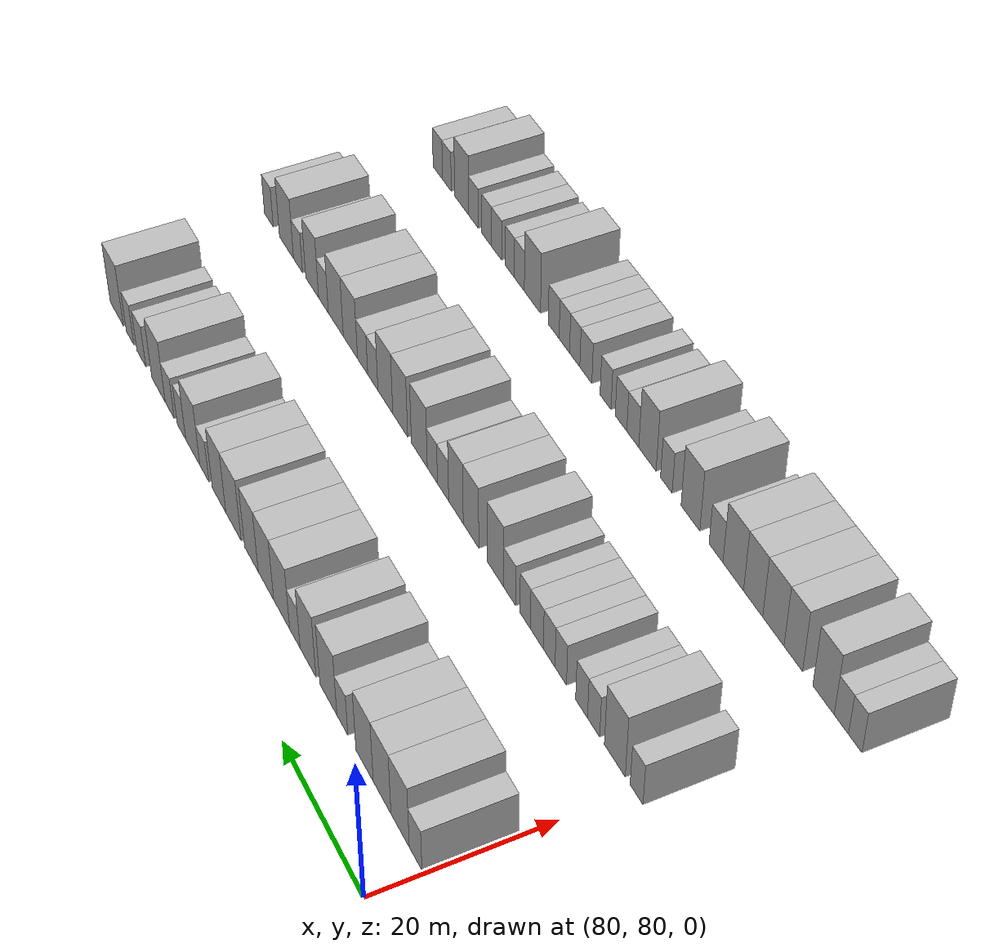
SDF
<sdf version="1.6">
 <world name="default">
  <model name="building_687">
   <static>1</static>
   <pose>91.0000 81.8575 0 0.000000 0.000000 0.000000</pose>
   <link name="link">
    <pose>0 0 3.00 0 0 0</pose>
    <collision name="collision"><geometry><box><size>10.0000 2.8744 6.0000</size></box></geometry></collision>
    <visual name="visual">
     <cast_shadows>0</cast_shadows>
     <geometry><box><size>10.0000 2.8744 6.0000</size></box></geometry>
     <material>
      <script>
       <uri>model://HANNAS_wall/materials/scripts</uri>
       <uri>model://HANNAS_wall/materials/textures</uri>
       <name>vrc/HANNAS_wall</name>
      </script>
     </material>
    </visual>
   </link>
  </model>
  <model name="building_688">
   <static>1</static>
   <pose>91.0000 85.4157 0 0.000000 0.000000 0.000000</pose>
   <link name="link">
    <pose>0 0 4.50 0 0 0</pose>
    <collision name="collision"><geometry><box><size>10.0000 4.2420 9.0000</size></box></geometry></collision>
    <visual name="visual">
     <cast_shadows>0</cast_shadows>
     <geometry><box><size>10.0000 4.2420 9.0000</size></box></geometry>
     <material>
      <script>
       <uri>model://HANNAS_wall/materials/scripts</uri>
       <uri>model://HANNAS_wall/materials/textures</uri>
       <name>vrc/HANNAS_wall</name>
      </script>
     </material>
    </visual>
   </link>
  </model>
  <model name="building_689">
   <static>1</static>
   <pose>91.0000 89.6374 0 0.000000 0.000000 0.000000</pose>
   <link name="link">
    <pose>0 0 4.50 0 0 0</pose>
    <collision name="collision"><geometry><box><size>10.0000 4.2013 9.0000</size></box></geometry></collision>
    <visual name="visual">
     <cast_shadows>0</cast_shadows>
     <geometry><box><size>10.0000 4.2013 9.0000</size></box></geometry>
     <material>
      <script>
       <uri>model://HANNAS_wall/materials/scripts</uri>
       <uri>model://HANNAS_wall/materials/textures</uri>
       <name>vrc/HANNAS_wall</name>
      </script>
     </material>
    </visual>
   </link>
  </model>
  <model name="building_690">
   <static>1</static>
   <pose>91.0000 93.8377 0 0.000000 0.000000 0.000000</pose>
   <link name="link">
    <pose>0 0 4.50 0 0 0</pose>
    <collision name="collision"><geometry><box><size>10.0000 4.1994 9.0000</size></box></geometry></collision>
    <visual name="visual">
     <cast_shadows>0</cast_shadows>
     <geometry><box><size>10.0000 4.1994 9.0000</size></box></geometry>
     <material>
      <script>
       <uri>model://HANNAS_wall/materials/scripts</uri>
       <uri>model://HANNAS_wall/materials/textures</uri>
       <name>vrc/HANNAS_wall</name>
      </script>
     </material>
    </visual>
   </link>
  </model>
  <model name="building_691">
   <static>1</static>
   <pose>91.0000 99.3033 0 0.000000 0.000000 0.000000</pose>
   <link name="link">
    <pose>0 0 3.00 0 0 0</pose>
    <collision name="collision"><geometry><box><size>10.0000 2.7318 6.0000</size></box></geometry></collision>
    <visual name="visual">
     <cast_shadows>0</cast_shadows>
     <geometry><box><size>10.0000 2.7318 6.0000</size></box></geometry>
     <material>
      <script>
       <uri>model://HANNAS_wall/materials/scripts</uri>
       <uri>model://HANNAS_wall/materials/textures</uri>
       <name>vrc/HANNAS_wall</name>
      </script>
     </material>
    </visual>
   </link>
  </model>
  <model name="building_692">
   <static>1</static>
   <pose>91.0000 102.8327 0 0.000000 0.000000 0.000000</pose>
   <link name="link">
    <pose>0 0 4.50 0 0 0</pose>
    <collision name="collision"><geometry><box><size>10.0000 4.3268 9.0000</size></box></geometry></collision>
    <visual name="visual">
     <cast_shadows>0</cast_shadows>
     <geometry><box><size>10.0000 4.3268 9.0000</size></box></geometry>
     <material>
      <script>
       <uri>model://HANNAS_wall/materials/scripts</uri>
       <uri>model://HANNAS_wall/materials/textures</uri>
       <name>vrc/HANNAS_wall</name>
      </script>
     </material>
    </visual>
   </link>
  </model>
  <model name="building_693">
   <static>1</static>
   <pose>91.0000 108.0775 0 0.000000 0.000000 0.000000</pose>
   <link name="link">
    <pose>0 0 4.50 0 0 0</pose>
    <collision name="collision"><geometry><box><size>10.0000 4.1629 9.0000</size></box></geometry></collision>
    <visual name="visual">
     <cast_shadows>0</cast_shadows>
     <geometry><box><size>10.0000 4.1629 9.0000</size></box></geometry>
     <material>
      <script>
       <uri>model://HANNAS_wall/materials/scripts</uri>
       <uri>model://HANNAS_wall/materials/textures</uri>
       <name>vrc/HANNAS_wall</name>
      </script>
     </material>
    </visual>
   </link>
  </model>
  <model name="building_694">
   <static>1</static>
   <pose>91.0000 111.5378 0 0.000000 0.000000 0.000000</pose>
   <link name="link">
    <pose>0 0 3.00 0 0 0</pose>
    <collision name="collision"><geometry><box><size>10.0000 2.7576 6.0000</size></box></geometry></collision>
    <visual name="visual">
     <cast_shadows>0</cast_shadows>
     <geometry><box><size>10.0000 2.7576 6.0000</size></box></geometry>
     <material>
      <script>
       <uri>model://HANNAS_wall/materials/scripts</uri>
       <uri>model://HANNAS_wall/materials/textures</uri>
       <name>vrc/HANNAS_wall</name>
      </script>
     </material>
    </visual>
   </link>
  </model>
  <model name="building_695">
   <static>1</static>
   <pose>91.0000 115.0925 0 0.000000 0.000000 0.000000</pose>
   <link name="link">
    <pose>0 0 4.50 0 0 0</pose>
    <collision name="collision"><geometry><box><size>10.0000 4.3520 9.0000</size></box></geometry></collision>
    <visual name="visual">
     <cast_shadows>0</cast_shadows>
     <geometry><box><size>10.0000 4.3520 9.0000</size></box></geometry>
     <material>
      <script>
       <uri>model://HANNAS_wall/materials/scripts</uri>
       <uri>model://HANNAS_wall/materials/textures</uri>
       <name>vrc/HANNAS_wall</name>
      </script>
     </material>
    </visual>
   </link>
  </model>
  <model name="building_696">
   <static>1</static>
   <pose>91.0000 119.4053 0 0.000000 0.000000 0.000000</pose>
   <link name="link">
    <pose>0 0 4.50 0 0 0</pose>
    <collision name="collision"><geometry><box><size>10.0000 4.2734 9.0000</size></box></geometry></collision>
    <visual name="visual">
     <cast_shadows>0</cast_shadows>
     <geometry><box><size>10.0000 4.2734 9.0000</size></box></geometry>
     <material>
      <script>
       <uri>model://HANNAS_wall/materials/scripts</uri>
       <uri>model://HANNAS_wall/materials/textures</uri>
       <name>vrc/HANNAS_wall</name>
      </script>
     </material>
    </visual>
   </link>
  </model>
  <model name="building_697">
   <static>1</static>
   <pose>91.0000 123.4751 0 0.000000 0.000000 0.000000</pose>
   <link name="link">
    <pose>0 0 4.50 0 0 0</pose>
    <collision name="collision"><geometry><box><size>10.0000 3.8663 9.0000</size></box></geometry></collision>
    <visual name="visual">
     <cast_shadows>0</cast_shadows>
     <geometry><box><size>10.0000 3.8663 9.0000</size></box></geometry>
     <material>
      <script>
       <uri>model://HANNAS_wall/materials/scripts</uri>
       <uri>model://HANNAS_wall/materials/textures</uri>
       <name>vrc/HANNAS_wall</name>
      </script>
     </material>
    </visual>
   </link>
  </model>
  <model name="building_698">
   <static>1</static>
   <pose>91.0000 128.6464 0 0.000000 0.000000 0.000000</pose>
   <link name="link">
    <pose>0 0 4.50 0 0 0</pose>
    <collision name="collision"><geometry><box><size>10.0000 4.4763 9.0000</size></box></geometry></collision>
    <visual name="visual">
     <cast_shadows>0</cast_shadows>
     <geometry><box><size>10.0000 4.4763 9.0000</size></box></geometry>
     <material>
      <script>
       <uri>model://HANNAS_wall/materials/scripts</uri>
       <uri>model://HANNAS_wall/materials/textures</uri>
       <name>vrc/HANNAS_wall</name>
      </script>
     </material>
    </visual>
   </link>
  </model>
  <model name="building_699">
   <static>1</static>
   <pose>91.0000 132.8843 0 0.000000 0.000000 0.000000</pose>
   <link name="link">
    <pose>0 0 4.50 0 0 0</pose>
    <collision name="collision"><geometry><box><size>10.0000 3.9995 9.0000</size></box></geometry></collision>
    <visual name="visual">
     <cast_shadows>0</cast_shadows>
     <geometry><box><size>10.0000 3.9995 9.0000</size></box></geometry>
     <material>
      <script>
       <uri>model://HANNAS_wall/materials/scripts</uri>
       <uri>model://HANNAS_wall/materials/textures</uri>
       <name>vrc/HANNAS_wall</name>
      </script>
     </material>
    </visual>
   </link>
  </model>
  <model name="building_700">
   <static>1</static>
   <pose>91.0000 137.2602 0 0.000000 0.000000 0.000000</pose>
   <link name="link">
    <pose>0 0 3.00 0 0 0</pose>
    <collision name="collision"><geometry><box><size>10.0000 2.7523 6.0000</size></box></geometry></collision>
    <visual name="visual">
     <cast_shadows>0</cast_shadows>
     <geometry><box><size>10.0000 2.7523 6.0000</size></box></geometry>
     <material>
      <script>
       <uri>model://HANNAS_wall/materials/scripts</uri>
       <uri>model://HANNAS_wall/materials/textures</uri>
       <name>vrc/HANNAS_wall</name>
      </script>
     </material>
    </visual>
   </link>
  </model>
  <model name="building_701">
   <static>1</static>
   <pose>91.0000 140.8229 0 0.000000 0.000000 0.000000</pose>
   <link name="link">
    <pose>0 0 4.50 0 0 0</pose>
    <collision name="collision"><geometry><box><size>10.0000 4.3731 9.0000</size></box></geometry></collision>
    <visual name="visual">
     <cast_shadows>0</cast_shadows>
     <geometry><box><size>10.0000 4.3731 9.0000</size></box></geometry>
     <material>
      <script>
       <uri>model://HANNAS_wall/materials/scripts</uri>
       <uri>model://HANNAS_wall/materials/textures</uri>
       <name>vrc/HANNAS_wall</name>
      </script>
     </material>
    </visual>
   </link>
  </model>
  <model name="building_702">
   <static>1</static>
   <pose>91.0000 144.3262 0 0.000000 0.000000 0.000000</pose>
   <link name="link">
    <pose>0 0 3.00 0 0 0</pose>
    <collision name="collision"><geometry><box><size>10.0000 2.6337 6.0000</size></box></geometry></collision>
    <visual name="visual">
     <cast_shadows>0</cast_shadows>
     <geometry><box><size>10.0000 2.6337 6.0000</size></box></geometry>
     <material>
      <script>
       <uri>model://HANNAS_wall/materials/scripts</uri>
       <uri>model://HANNAS_wall/materials/textures</uri>
       <name>vrc/HANNAS_wall</name>
      </script>
     </material>
    </visual>
   </link>
  </model>
  <model name="building_703">
   <static>1</static>
   <pose>91.0000 148.0651 0 0.000000 0.000000 0.000000</pose>
   <link name="link">
    <pose>0 0 3.00 0 0 0</pose>
    <collision name="collision"><geometry><box><size>10.0000 2.8441 6.0000</size></box></geometry></collision>
    <visual name="visual">
     <cast_shadows>0</cast_shadows>
     <geometry><box><size>10.0000 2.8441 6.0000</size></box></geometry>
     <material>
      <script>
       <uri>model://HANNAS_wall/materials/scripts</uri>
       <uri>model://HANNAS_wall/materials/textures</uri>
       <name>vrc/HANNAS_wall</name>
      </script>
     </material>
    </visual>
   </link>
  </model>
  <model name="building_704">
   <static>1</static>
   <pose>91.0000 151.6597 0 0.000000 0.000000 0.000000</pose>
   <link name="link">
    <pose>0 0 4.50 0 0 0</pose>
    <collision name="collision"><geometry><box><size>10.0000 4.3451 9.0000</size></box></geometry></collision>
    <visual name="visual">
     <cast_shadows>0</cast_shadows>
     <geometry><box><size>10.0000 4.3451 9.0000</size></box></geometry>
     <material>
      <script>
       <uri>model://HANNAS_wall/materials/scripts</uri>
       <uri>model://HANNAS_wall/materials/textures</uri>
       <name>vrc/HANNAS_wall</name>
      </script>
     </material>
    </visual>
   </link>
  </model>
  <model name="building_705">
   <static>1</static>
   <pose>91.0000 157.3142 0 0.000000 0.000000 0.000000</pose>
   <link name="link">
    <pose>0 0 3.00 0 0 0</pose>
    <collision name="collision"><geometry><box><size>10.0000 2.9640 6.0000</size></box></geometry></collision>
    <visual name="visual">
     <cast_shadows>0</cast_shadows>
     <geometry><box><size>10.0000 2.9640 6.0000</size></box></geometry>
     <material>
      <script>
       <uri>model://HANNAS_wall/materials/scripts</uri>
       <uri>model://HANNAS_wall/materials/textures</uri>
       <name>vrc/HANNAS_wall</name>
      </script>
     </material>
    </visual>
   </link>
  </model>
  <model name="building_706">
   <static>1</static>
   <pose>91.0000 161.1020 0 0.000000 0.000000 0.000000</pose>
   <link name="link">
    <pose>0 0 3.00 0 0 0</pose>
    <collision name="collision"><geometry><box><size>10.0000 2.6116 6.0000</size></box></geometry></collision>
    <visual name="visual">
     <cast_shadows>0</cast_shadows>
     <geometry><box><size>10.0000 2.6116 6.0000</size></box></geometry>
     <material>
      <script>
       <uri>model://HANNAS_wall/materials/scripts</uri>
       <uri>model://HANNAS_wall/materials/textures</uri>
       <name>vrc/HANNAS_wall</name>
      </script>
     </material>
    </visual>
   </link>
  </model>
  <model name="building_707">
   <static>1</static>
   <pose>91.0000 165.6554 0 0.000000 0.000000 0.000000</pose>
   <link name="link">
    <pose>0 0 4.50 0 0 0</pose>
    <collision name="collision"><geometry><box><size>10.0000 4.4952 9.0000</size></box></geometry></collision>
    <visual name="visual">
     <cast_shadows>0</cast_shadows>
     <geometry><box><size>10.0000 4.4952 9.0000</size></box></geometry>
     <material>
      <script>
       <uri>model://HANNAS_wall/materials/scripts</uri>
       <uri>model://HANNAS_wall/materials/textures</uri>
       <name>vrc/HANNAS_wall</name>
      </script>
     </material>
    </visual>
   </link>
  </model>
  <model name="building_857">
   <static>1</static>
   <pose>113.0000 79.5423 0 0.000000 0.000000 0.000000</pose>
   <link name="link">
    <pose>0 0 3.00 0 0 0</pose>
    <collision name="collision"><geometry><box><size>10.0000 2.6088 6.0000</size></box></geometry></collision>
    <visual name="visual">
     <cast_shadows>0</cast_shadows>
     <geometry><box><size>10.0000 2.6088 6.0000</size></box></geometry>
     <material>
      <script>
       <uri>model://HANNAS_wall/materials/scripts</uri>
       <uri>model://HANNAS_wall/materials/textures</uri>
       <name>vrc/HANNAS_wall</name>
      </script>
     </material>
    </visual>
   </link>
  </model>
  <model name="building_858">
   <static>1</static>
   <pose>113.0000 84.0245 0 0.000000 0.000000 0.000000</pose>
   <link name="link">
    <pose>0 0 4.50 0 0 0</pose>
    <collision name="collision"><geometry><box><size>10.0000 4.3556 9.0000</size></box></geometry></collision>
    <visual name="visual">
     <cast_shadows>0</cast_shadows>
     <geometry><box><size>10.0000 4.3556 9.0000</size></box></geometry>
     <material>
      <script>
       <uri>model://HANNAS_wall/materials/scripts</uri>
       <uri>model://HANNAS_wall/materials/textures</uri>
       <name>vrc/HANNAS_wall</name>
      </script>
     </material>
    </visual>
   </link>
  </model>
  <model name="building_859">
   <static>1</static>
   <pose>113.0000 88.5052 0 0.000000 0.000000 0.000000</pose>
   <link name="link">
    <pose>0 0 3.00 0 0 0</pose>
    <collision name="collision"><geometry><box><size>10.0000 2.6057 6.0000</size></box></geometry></collision>
    <visual name="visual">
     <cast_shadows>0</cast_shadows>
     <geometry><box><size>10.0000 2.6057 6.0000</size></box></geometry>
     <material>
      <script>
       <uri>model://HANNAS_wall/materials/scripts</uri>
       <uri>model://HANNAS_wall/materials/textures</uri>
       <name>vrc/HANNAS_wall</name>
      </script>
     </material>
    </visual>
   </link>
  </model>
  <model name="building_860">
   <static>1</static>
   <pose>113.0000 91.0915 0 0.000000 0.000000 0.000000</pose>
   <link name="link">
    <pose>0 0 3.00 0 0 0</pose>
    <collision name="collision"><geometry><box><size>10.0000 2.5670 6.0000</size></box></geometry></collision>
    <visual name="visual">
     <cast_shadows>0</cast_shadows>
     <geometry><box><size>10.0000 2.5670 6.0000</size></box></geometry>
     <material>
      <script>
       <uri>model://HANNAS_wall/materials/scripts</uri>
       <uri>model://HANNAS_wall/materials/textures</uri>
       <name>vrc/HANNAS_wall</name>
      </script>
     </material>
    </visual>
   </link>
  </model>
  <model name="building_861">
   <static>1</static>
   <pose>113.0000 95.6487 0 0.000000 0.000000 0.000000</pose>
   <link name="link">
    <pose>0 0 3.00 0 0 0</pose>
    <collision name="collision"><geometry><box><size>10.0000 2.5474 6.0000</size></box></geometry></collision>
    <visual name="visual">
     <cast_shadows>0</cast_shadows>
     <geometry><box><size>10.0000 2.5474 6.0000</size></box></geometry>
     <material>
      <script>
       <uri>model://HANNAS_wall/materials/scripts</uri>
       <uri>model://HANNAS_wall/materials/textures</uri>
       <name>vrc/HANNAS_wall</name>
      </script>
     </material>
    </visual>
   </link>
  </model>
  <model name="building_862">
   <static>1</static>
   <pose>113.0000 98.2410 0 0.000000 0.000000 0.000000</pose>
   <link name="link">
    <pose>0 0 3.00 0 0 0</pose>
    <collision name="collision"><geometry><box><size>10.0000 2.6370 6.0000</size></box></geometry></collision>
    <visual name="visual">
     <cast_shadows>0</cast_shadows>
     <geometry><box><size>10.0000 2.6370 6.0000</size></box></geometry>
     <material>
      <script>
       <uri>model://HANNAS_wall/materials/scripts</uri>
       <uri>model://HANNAS_wall/materials/textures</uri>
       <name>vrc/HANNAS_wall</name>
      </script>
     </material>
    </visual>
   </link>
  </model>
  <model name="building_863">
   <static>1</static>
   <pose>113.0000 101.0373 0 0.000000 0.000000 0.000000</pose>
   <link name="link">
    <pose>0 0 3.00 0 0 0</pose>
    <collision name="collision"><geometry><box><size>10.0000 2.9557 6.0000</size></box></geometry></collision>
    <visual name="visual">
     <cast_shadows>0</cast_shadows>
     <geometry><box><size>10.0000 2.9557 6.0000</size></box></geometry>
     <material>
      <script>
       <uri>model://HANNAS_wall/materials/scripts</uri>
       <uri>model://HANNAS_wall/materials/textures</uri>
       <name>vrc/HANNAS_wall</name>
      </script>
     </material>
    </visual>
   </link>
  </model>
  <model name="building_864">
   <static>1</static>
   <pose>113.0000 103.7217 0 0.000000 0.000000 0.000000</pose>
   <link name="link">
    <pose>0 0 3.00 0 0 0</pose>
    <collision name="collision"><geometry><box><size>10.0000 2.4132 6.0000</size></box></geometry></collision>
    <visual name="visual">
     <cast_shadows>0</cast_shadows>
     <geometry><box><size>10.0000 2.4132 6.0000</size></box></geometry>
     <material>
      <script>
       <uri>model://HANNAS_wall/materials/scripts</uri>
       <uri>model://HANNAS_wall/materials/textures</uri>
       <name>vrc/HANNAS_wall</name>
      </script>
     </material>
    </visual>
   </link>
  </model>
  <model name="building_865">
   <static>1</static>
   <pose>113.0000 107.3459 0 0.000000 0.000000 0.000000</pose>
   <link name="link">
    <pose>0 0 3.00 0 0 0</pose>
    <collision name="collision"><geometry><box><size>10.0000 2.8350 6.0000</size></box></geometry></collision>
    <visual name="visual">
     <cast_shadows>0</cast_shadows>
     <geometry><box><size>10.0000 2.8350 6.0000</size></box></geometry>
     <material>
      <script>
       <uri>model://HANNAS_wall/materials/scripts</uri>
       <uri>model://HANNAS_wall/materials/textures</uri>
       <name>vrc/HANNAS_wall</name>
      </script>
     </material>
    </visual>
   </link>
  </model>
  <model name="building_866">
   <static>1</static>
   <pose>113.0000 110.7532 0 0.000000 0.000000 0.000000</pose>
   <link name="link">
    <pose>0 0 4.50 0 0 0</pose>
    <collision name="collision"><geometry><box><size>10.0000 3.9797 9.0000</size></box></geometry></collision>
    <visual name="visual">
     <cast_shadows>0</cast_shadows>
     <geometry><box><size>10.0000 3.9797 9.0000</size></box></geometry>
     <material>
      <script>
       <uri>model://HANNAS_wall/materials/scripts</uri>
       <uri>model://HANNAS_wall/materials/textures</uri>
       <name>vrc/HANNAS_wall</name>
      </script>
     </material>
    </visual>
   </link>
  </model>
  <model name="building_867">
   <static>1</static>
   <pose>113.0000 116.6661 0 0.000000 0.000000 0.000000</pose>
   <link name="link">
    <pose>0 0 4.50 0 0 0</pose>
    <collision name="collision"><geometry><box><size>10.0000 3.8461 9.0000</size></box></geometry></collision>
    <visual name="visual">
     <cast_shadows>0</cast_shadows>
     <geometry><box><size>10.0000 3.8461 9.0000</size></box></geometry>
     <material>
      <script>
       <uri>model://HANNAS_wall/materials/scripts</uri>
       <uri>model://HANNAS_wall/materials/textures</uri>
       <name>vrc/HANNAS_wall</name>
      </script>
     </material>
    </visual>
   </link>
  </model>
  <model name="building_868">
   <static>1</static>
   <pose>113.0000 120.4282 0 0.000000 0.000000 0.000000</pose>
   <link name="link">
    <pose>0 0 4.50 0 0 0</pose>
    <collision name="collision"><geometry><box><size>10.0000 3.6781 9.0000</size></box></geometry></collision>
    <visual name="visual">
     <cast_shadows>0</cast_shadows>
     <geometry><box><size>10.0000 3.6781 9.0000</size></box></geometry>
     <material>
      <script>
       <uri>model://HANNAS_wall/materials/scripts</uri>
       <uri>model://HANNAS_wall/materials/textures</uri>
       <name>vrc/HANNAS_wall</name>
      </script>
     </material>
    </visual>
   </link>
  </model>
  <model name="building_869">
   <static>1</static>
   <pose>113.0000 123.7014 0 0.000000 0.000000 0.000000</pose>
   <link name="link">
    <pose>0 0 3.00 0 0 0</pose>
    <collision name="collision"><geometry><box><size>10.0000 2.8683 6.0000</size></box></geometry></collision>
    <visual name="visual">
     <cast_shadows>0</cast_shadows>
     <geometry><box><size>10.0000 2.8683 6.0000</size></box></geometry>
     <material>
      <script>
       <uri>model://HANNAS_wall/materials/scripts</uri>
       <uri>model://HANNAS_wall/materials/textures</uri>
       <name>vrc/HANNAS_wall</name>
      </script>
     </material>
    </visual>
   </link>
  </model>
  <model name="building_870">
   <static>1</static>
   <pose>113.0000 126.4548 0 0.000000 0.000000 0.000000</pose>
   <link name="link">
    <pose>0 0 3.00 0 0 0</pose>
    <collision name="collision"><geometry><box><size>10.0000 2.6384 6.0000</size></box></geometry></collision>
    <visual name="visual">
     <cast_shadows>0</cast_shadows>
     <geometry><box><size>10.0000 2.6384 6.0000</size></box></geometry>
     <material>
      <script>
       <uri>model://HANNAS_wall/materials/scripts</uri>
       <uri>model://HANNAS_wall/materials/textures</uri>
       <name>vrc/HANNAS_wall</name>
      </script>
     </material>
    </visual>
   </link>
  </model>
  <model name="building_871">
   <static>1</static>
   <pose>113.0000 129.8614 0 0.000000 0.000000 0.000000</pose>
   <link name="link">
    <pose>0 0 4.50 0 0 0</pose>
    <collision name="collision"><geometry><box><size>10.0000 4.1749 9.0000</size></box></geometry></collision>
    <visual name="visual">
     <cast_shadows>0</cast_shadows>
     <geometry><box><size>10.0000 4.1749 9.0000</size></box></geometry>
     <material>
      <script>
       <uri>model://HANNAS_wall/materials/scripts</uri>
       <uri>model://HANNAS_wall/materials/textures</uri>
       <name>vrc/HANNAS_wall</name>
      </script>
     </material>
    </visual>
   </link>
  </model>
  <model name="building_872">
   <static>1</static>
   <pose>113.0000 134.9610 0 0.000000 0.000000 0.000000</pose>
   <link name="link">
    <pose>0 0 4.50 0 0 0</pose>
    <collision name="collision"><geometry><box><size>10.0000 4.0244 9.0000</size></box></geometry></collision>
    <visual name="visual">
     <cast_shadows>0</cast_shadows>
     <geometry><box><size>10.0000 4.0244 9.0000</size></box></geometry>
     <material>
      <script>
       <uri>model://HANNAS_wall/materials/scripts</uri>
       <uri>model://HANNAS_wall/materials/textures</uri>
       <name>vrc/HANNAS_wall</name>
      </script>
     </material>
    </visual>
   </link>
  </model>
  <model name="building_873">
   <static>1</static>
   <pose>113.0000 139.0207 0 0.000000 0.000000 0.000000</pose>
   <link name="link">
    <pose>0 0 4.50 0 0 0</pose>
    <collision name="collision"><geometry><box><size>10.0000 4.0950 9.0000</size></box></geometry></collision>
    <visual name="visual">
     <cast_shadows>0</cast_shadows>
     <geometry><box><size>10.0000 4.0950 9.0000</size></box></geometry>
     <material>
      <script>
       <uri>model://HANNAS_wall/materials/scripts</uri>
       <uri>model://HANNAS_wall/materials/textures</uri>
       <name>vrc/HANNAS_wall</name>
      </script>
     </material>
    </visual>
   </link>
  </model>
  <model name="building_874">
   <static>1</static>
   <pose>113.0000 142.4930 0 0.000000 0.000000 0.000000</pose>
   <link name="link">
    <pose>0 0 3.00 0 0 0</pose>
    <collision name="collision"><geometry><box><size>10.0000 2.8495 6.0000</size></box></geometry></collision>
    <visual name="visual">
     <cast_shadows>0</cast_shadows>
     <geometry><box><size>10.0000 2.8495 6.0000</size></box></geometry>
     <material>
      <script>
       <uri>model://HANNAS_wall/materials/scripts</uri>
       <uri>model://HANNAS_wall/materials/textures</uri>
       <name>vrc/HANNAS_wall</name>
      </script>
     </material>
    </visual>
   </link>
  </model>
  <model name="building_875">
   <static>1</static>
   <pose>113.0000 145.3666 0 0.000000 0.000000 0.000000</pose>
   <link name="link">
    <pose>0 0 3.00 0 0 0</pose>
    <collision name="collision"><geometry><box><size>10.0000 2.8977 6.0000</size></box></geometry></collision>
    <visual name="visual">
     <cast_shadows>0</cast_shadows>
     <geometry><box><size>10.0000 2.8977 6.0000</size></box></geometry>
     <material>
      <script>
       <uri>model://HANNAS_wall/materials/scripts</uri>
       <uri>model://HANNAS_wall/materials/textures</uri>
       <name>vrc/HANNAS_wall</name>
      </script>
     </material>
    </visual>
   </link>
  </model>
  <model name="building_876">
   <static>1</static>
   <pose>113.0000 148.8665 0 0.000000 0.000000 0.000000</pose>
   <link name="link">
    <pose>0 0 4.50 0 0 0</pose>
    <collision name="collision"><geometry><box><size>10.0000 4.1021 9.0000</size></box></geometry></collision>
    <visual name="visual">
     <cast_shadows>0</cast_shadows>
     <geometry><box><size>10.0000 4.1021 9.0000</size></box></geometry>
     <material>
      <script>
       <uri>model://HANNAS_wall/materials/scripts</uri>
       <uri>model://HANNAS_wall/materials/textures</uri>
       <name>vrc/HANNAS_wall</name>
      </script>
     </material>
    </visual>
   </link>
  </model>
  <model name="building_877">
   <static>1</static>
   <pose>113.0000 153.1227 0 0.000000 0.000000 0.000000</pose>
   <link name="link">
    <pose>0 0 4.50 0 0 0</pose>
    <collision name="collision"><geometry><box><size>10.0000 4.4104 9.0000</size></box></geometry></collision>
    <visual name="visual">
     <cast_shadows>0</cast_shadows>
     <geometry><box><size>10.0000 4.4104 9.0000</size></box></geometry>
     <material>
      <script>
       <uri>model://HANNAS_wall/materials/scripts</uri>
       <uri>model://HANNAS_wall/materials/textures</uri>
       <name>vrc/HANNAS_wall</name>
      </script>
     </material>
    </visual>
   </link>
  </model>
  <model name="building_878">
   <static>1</static>
   <pose>113.0000 156.7781 0 0.000000 0.000000 0.000000</pose>
   <link name="link">
    <pose>0 0 3.00 0 0 0</pose>
    <collision name="collision"><geometry><box><size>10.0000 2.9002 6.0000</size></box></geometry></collision>
    <visual name="visual">
     <cast_shadows>0</cast_shadows>
     <geometry><box><size>10.0000 2.9002 6.0000</size></box></geometry>
     <material>
      <script>
       <uri>model://HANNAS_wall/materials/scripts</uri>
       <uri>model://HANNAS_wall/materials/textures</uri>
       <name>vrc/HANNAS_wall</name>
      </script>
     </material>
    </visual>
   </link>
  </model>
  <model name="building_879">
   <static>1</static>
   <pose>113.0000 160.1842 0 0.000000 0.000000 0.000000</pose>
   <link name="link">
    <pose>0 0 4.50 0 0 0</pose>
    <collision name="collision"><geometry><box><size>10.0000 3.9121 9.0000</size></box></geometry></collision>
    <visual name="visual">
     <cast_shadows>0</cast_shadows>
     <geometry><box><size>10.0000 3.9121 9.0000</size></box></geometry>
     <material>
      <script>
       <uri>model://HANNAS_wall/materials/scripts</uri>
       <uri>model://HANNAS_wall/materials/textures</uri>
       <name>vrc/HANNAS_wall</name>
      </script>
     </material>
    </visual>
   </link>
  </model>
  <model name="building_880">
   <static>1</static>
   <pose>113.0000 164.5299 0 0.000000 0.000000 0.000000</pose>
   <link name="link">
    <pose>0 0 3.00 0 0 0</pose>
    <collision name="collision"><geometry><box><size>10.0000 2.7793 6.0000</size></box></geometry></collision>
    <visual name="visual">
     <cast_shadows>0</cast_shadows>
     <geometry><box><size>10.0000 2.7793 6.0000</size></box></geometry>
     <material>
      <script>
       <uri>model://HANNAS_wall/materials/scripts</uri>
       <uri>model://HANNAS_wall/materials/textures</uri>
       <name>vrc/HANNAS_wall</name>
      </script>
     </material>
    </visual>
   </link>
  </model>
  <model name="building_881">
   <static>1</static>
   <pose>113.0000 168.1222 0 0.000000 0.000000 0.000000</pose>
   <link name="link">
    <pose>0 0 4.50 0 0 0</pose>
    <collision name="collision"><geometry><box><size>10.0000 4.4052 9.0000</size></box></geometry></collision>
    <visual name="visual">
     <cast_shadows>0</cast_shadows>
     <geometry><box><size>10.0000 4.4052 9.0000</size></box></geometry>
     <material>
      <script>
       <uri>model://HANNAS_wall/materials/scripts</uri>
       <uri>model://HANNAS_wall/materials/textures</uri>
       <name>vrc/HANNAS_wall</name>
      </script>
     </material>
    </visual>
   </link>
  </model>
  <model name="building_882">
   <static>1</static>
   <pose>113.0000 173.7258 0 0.000000 0.000000 0.000000</pose>
   <link name="link">
    <pose>0 0 3.00 0 0 0</pose>
    <collision name="collision"><geometry><box><size>10.0000 2.8020 6.0000</size></box></geometry></collision>
    <visual name="visual">
     <cast_shadows>0</cast_shadows>
     <geometry><box><size>10.0000 2.8020 6.0000</size></box></geometry>
     <material>
      <script>
       <uri>model://HANNAS_wall/materials/scripts</uri>
       <uri>model://HANNAS_wall/materials/textures</uri>
       <name>vrc/HANNAS_wall</name>
      </script>
     </material>
    </visual>
   </link>
  </model>
  <model name="building_1044">
   <static>1</static>
   <pose>135.0000 75.8274 0 0.000000 0.000000 0.000000</pose>
   <link name="link">
    <pose>0 0 3.00 0 0 0</pose>
    <collision name="collision"><geometry><box><size>10.0000 2.4998 6.0000</size></box></geometry></collision>
    <visual name="visual">
     <cast_shadows>0</cast_shadows>
     <geometry><box><size>10.0000 2.4998 6.0000</size></box></geometry>
     <material>
      <script>
       <uri>model://HANNAS_wall/materials/scripts</uri>
       <uri>model://HANNAS_wall/materials/textures</uri>
       <name>vrc/HANNAS_wall</name>
      </script>
     </material>
    </visual>
   </link>
  </model>
  <model name="building_1045">
   <static>1</static>
   <pose>135.0000 78.4178 0 0.000000 0.000000 0.000000</pose>
   <link name="link">
    <pose>0 0 3.00 0 0 0</pose>
    <collision name="collision"><geometry><box><size>10.0000 2.6809 6.0000</size></box></geometry></collision>
    <visual name="visual">
     <cast_shadows>0</cast_shadows>
     <geometry><box><size>10.0000 2.6809 6.0000</size></box></geometry>
     <material>
      <script>
       <uri>model://HANNAS_wall/materials/scripts</uri>
       <uri>model://HANNAS_wall/materials/textures</uri>
       <name>vrc/HANNAS_wall</name>
      </script>
     </material>
    </visual>
   </link>
  </model>
  <model name="building_1046">
   <static>1</static>
   <pose>135.0000 81.7926 0 0.000000 0.000000 0.000000</pose>
   <link name="link">
    <pose>0 0 4.50 0 0 0</pose>
    <collision name="collision"><geometry><box><size>10.0000 4.0687 9.0000</size></box></geometry></collision>
    <visual name="visual">
     <cast_shadows>0</cast_shadows>
     <geometry><box><size>10.0000 4.0687 9.0000</size></box></geometry>
     <material>
      <script>
       <uri>model://HANNAS_wall/materials/scripts</uri>
       <uri>model://HANNAS_wall/materials/textures</uri>
       <name>vrc/HANNAS_wall</name>
      </script>
     </material>
    </visual>
   </link>
  </model>
  <model name="building_1047">
   <static>1</static>
   <pose>135.0000 87.6497 0 0.000000 0.000000 0.000000</pose>
   <link name="link">
    <pose>0 0 4.50 0 0 0</pose>
    <collision name="collision"><geometry><box><size>10.0000 3.6455 9.0000</size></box></geometry></collision>
    <visual name="visual">
     <cast_shadows>0</cast_shadows>
     <geometry><box><size>10.0000 3.6455 9.0000</size></box></geometry>
     <material>
      <script>
       <uri>model://HANNAS_wall/materials/scripts</uri>
       <uri>model://HANNAS_wall/materials/textures</uri>
       <name>vrc/HANNAS_wall</name>
      </script>
     </material>
    </visual>
   </link>
  </model>
  <model name="building_1048">
   <static>1</static>
   <pose>135.0000 91.6147 0 0.000000 0.000000 0.000000</pose>
   <link name="link">
    <pose>0 0 4.50 0 0 0</pose>
    <collision name="collision"><geometry><box><size>10.0000 4.2844 9.0000</size></box></geometry></collision>
    <visual name="visual">
     <cast_shadows>0</cast_shadows>
     <geometry><box><size>10.0000 4.2844 9.0000</size></box></geometry>
     <material>
      <script>
       <uri>model://HANNAS_wall/materials/scripts</uri>
       <uri>model://HANNAS_wall/materials/textures</uri>
       <name>vrc/HANNAS_wall</name>
      </script>
     </material>
    </visual>
   </link>
  </model>
  <model name="building_1049">
   <static>1</static>
   <pose>135.0000 95.7207 0 0.000000 0.000000 0.000000</pose>
   <link name="link">
    <pose>0 0 4.50 0 0 0</pose>
    <collision name="collision"><geometry><box><size>10.0000 3.9277 9.0000</size></box></geometry></collision>
    <visual name="visual">
     <cast_shadows>0</cast_shadows>
     <geometry><box><size>10.0000 3.9277 9.0000</size></box></geometry>
     <material>
      <script>
       <uri>model://HANNAS_wall/materials/scripts</uri>
       <uri>model://HANNAS_wall/materials/textures</uri>
       <name>vrc/HANNAS_wall</name>
      </script>
     </material>
    </visual>
   </link>
  </model>
  <model name="building_1050">
   <static>1</static>
   <pose>135.0000 99.8468 0 0.000000 0.000000 0.000000</pose>
   <link name="link">
    <pose>0 0 4.50 0 0 0</pose>
    <collision name="collision"><geometry><box><size>10.0000 4.3245 9.0000</size></box></geometry></collision>
    <visual name="visual">
     <cast_shadows>0</cast_shadows>
     <geometry><box><size>10.0000 4.3245 9.0000</size></box></geometry>
     <material>
      <script>
       <uri>model://HANNAS_wall/materials/scripts</uri>
       <uri>model://HANNAS_wall/materials/textures</uri>
       <name>vrc/HANNAS_wall</name>
      </script>
     </material>
    </visual>
   </link>
  </model>
  <model name="building_1051">
   <static>1</static>
   <pose>135.0000 103.4838 0 0.000000 0.000000 0.000000</pose>
   <link name="link">
    <pose>0 0 3.00 0 0 0</pose>
    <collision name="collision"><geometry><box><size>10.0000 2.9494 6.0000</size></box></geometry></collision>
    <visual name="visual">
     <cast_shadows>0</cast_shadows>
     <geometry><box><size>10.0000 2.9494 6.0000</size></box></geometry>
     <material>
      <script>
       <uri>model://HANNAS_wall/materials/scripts</uri>
       <uri>model://HANNAS_wall/materials/textures</uri>
       <name>vrc/HANNAS_wall</name>
      </script>
     </material>
    </visual>
   </link>
  </model>
  <model name="building_1052">
   <static>1</static>
   <pose>135.0000 109.0140 0 0.000000 0.000000 0.000000</pose>
   <link name="link">
    <pose>0 0 4.50 0 0 0</pose>
    <collision name="collision"><geometry><box><size>10.0000 4.1110 9.0000</size></box></geometry></collision>
    <visual name="visual">
     <cast_shadows>0</cast_shadows>
     <geometry><box><size>10.0000 4.1110 9.0000</size></box></geometry>
     <material>
      <script>
       <uri>model://HANNAS_wall/materials/scripts</uri>
       <uri>model://HANNAS_wall/materials/textures</uri>
       <name>vrc/HANNAS_wall</name>
      </script>
     </material>
    </visual>
   </link>
  </model>
  <model name="building_1053">
   <static>1</static>
   <pose>135.0000 114.3756 0 0.000000 0.000000 0.000000</pose>
   <link name="link">
    <pose>0 0 3.00 0 0 0</pose>
    <collision name="collision"><geometry><box><size>10.0000 2.6123 6.0000</size></box></geometry></collision>
    <visual name="visual">
     <cast_shadows>0</cast_shadows>
     <geometry><box><size>10.0000 2.6123 6.0000</size></box></geometry>
     <material>
      <script>
       <uri>model://HANNAS_wall/materials/scripts</uri>
       <uri>model://HANNAS_wall/materials/textures</uri>
       <name>vrc/HANNAS_wall</name>
      </script>
     </material>
    </visual>
   </link>
  </model>
  <model name="building_1054">
   <static>1</static>
   <pose>135.0000 118.6736 0 0.000000 0.000000 0.000000</pose>
   <link name="link">
    <pose>0 0 4.50 0 0 0</pose>
    <collision name="collision"><geometry><box><size>10.0000 3.9837 9.0000</size></box></geometry></collision>
    <visual name="visual">
     <cast_shadows>0</cast_shadows>
     <geometry><box><size>10.0000 3.9837 9.0000</size></box></geometry>
     <material>
      <script>
       <uri>model://HANNAS_wall/materials/scripts</uri>
       <uri>model://HANNAS_wall/materials/textures</uri>
       <name>vrc/HANNAS_wall</name>
      </script>
     </material>
    </visual>
   </link>
  </model>
  <model name="building_1055">
   <static>1</static>
   <pose>135.0000 122.0636 0 0.000000 0.000000 0.000000</pose>
   <link name="link">
    <pose>0 0 3.00 0 0 0</pose>
    <collision name="collision"><geometry><box><size>10.0000 2.7962 6.0000</size></box></geometry></collision>
    <visual name="visual">
     <cast_shadows>0</cast_shadows>
     <geometry><box><size>10.0000 2.7962 6.0000</size></box></geometry>
     <material>
      <script>
       <uri>model://HANNAS_wall/materials/scripts</uri>
       <uri>model://HANNAS_wall/materials/textures</uri>
       <name>vrc/HANNAS_wall</name>
      </script>
     </material>
    </visual>
   </link>
  </model>
  <model name="building_1056">
   <static>1</static>
   <pose>135.0000 124.8374 0 0.000000 0.000000 0.000000</pose>
   <link name="link">
    <pose>0 0 3.00 0 0 0</pose>
    <collision name="collision"><geometry><box><size>10.0000 2.7514 6.0000</size></box></geometry></collision>
    <visual name="visual">
     <cast_shadows>0</cast_shadows>
     <geometry><box><size>10.0000 2.7514 6.0000</size></box></geometry>
     <material>
      <script>
       <uri>model://HANNAS_wall/materials/scripts</uri>
       <uri>model://HANNAS_wall/materials/textures</uri>
       <name>vrc/HANNAS_wall</name>
      </script>
     </material>
    </visual>
   </link>
  </model>
  <model name="building_1057">
   <static>1</static>
   <pose>135.0000 128.5306 0 0.000000 0.000000 0.000000</pose>
   <link name="link">
    <pose>0 0 3.00 0 0 0</pose>
    <collision name="collision"><geometry><box><size>10.0000 2.6349 6.0000</size></box></geometry></collision>
    <visual name="visual">
     <cast_shadows>0</cast_shadows>
     <geometry><box><size>10.0000 2.6349 6.0000</size></box></geometry>
     <material>
      <script>
       <uri>model://HANNAS_wall/materials/scripts</uri>
       <uri>model://HANNAS_wall/materials/textures</uri>
       <name>vrc/HANNAS_wall</name>
      </script>
     </material>
    </visual>
   </link>
  </model>
  <model name="building_1058">
   <static>1</static>
   <pose>135.0000 133.3330 0 0.000000 0.000000 0.000000</pose>
   <link name="link">
    <pose>0 0 3.00 0 0 0</pose>
    <collision name="collision"><geometry><box><size>10.0000 2.9697 6.0000</size></box></geometry></collision>
    <visual name="visual">
     <cast_shadows>0</cast_shadows>
     <geometry><box><size>10.0000 2.9697 6.0000</size></box></geometry>
     <material>
      <script>
       <uri>model://HANNAS_wall/materials/scripts</uri>
       <uri>model://HANNAS_wall/materials/textures</uri>
       <name>vrc/HANNAS_wall</name>
      </script>
     </material>
    </visual>
   </link>
  </model>
  <model name="building_1059">
   <static>1</static>
   <pose>135.0000 136.1008 0 0.000000 0.000000 0.000000</pose>
   <link name="link">
    <pose>0 0 3.00 0 0 0</pose>
    <collision name="collision"><geometry><box><size>10.0000 2.5659 6.0000</size></box></geometry></collision>
    <visual name="visual">
     <cast_shadows>0</cast_shadows>
     <geometry><box><size>10.0000 2.5659 6.0000</size></box></geometry>
     <material>
      <script>
       <uri>model://HANNAS_wall/materials/scripts</uri>
       <uri>model://HANNAS_wall/materials/textures</uri>
       <name>vrc/HANNAS_wall</name>
      </script>
     </material>
    </visual>
   </link>
  </model>
  <model name="building_1060">
   <static>1</static>
   <pose>135.0000 138.7038 0 0.000000 0.000000 0.000000</pose>
   <link name="link">
    <pose>0 0 3.00 0 0 0</pose>
    <collision name="collision"><geometry><box><size>10.0000 2.6401 6.0000</size></box></geometry></collision>
    <visual name="visual">
     <cast_shadows>0</cast_shadows>
     <geometry><box><size>10.0000 2.6401 6.0000</size></box></geometry>
     <material>
      <script>
       <uri>model://HANNAS_wall/materials/scripts</uri>
       <uri>model://HANNAS_wall/materials/textures</uri>
       <name>vrc/HANNAS_wall</name>
      </script>
     </material>
    </visual>
   </link>
  </model>
  <model name="building_1061">
   <static>1</static>
   <pose>135.0000 141.4144 0 0.000000 0.000000 0.000000</pose>
   <link name="link">
    <pose>0 0 3.00 0 0 0</pose>
    <collision name="collision"><geometry><box><size>10.0000 2.7810 6.0000</size></box></geometry></collision>
    <visual name="visual">
     <cast_shadows>0</cast_shadows>
     <geometry><box><size>10.0000 2.7810 6.0000</size></box></geometry>
     <material>
      <script>
       <uri>model://HANNAS_wall/materials/scripts</uri>
       <uri>model://HANNAS_wall/materials/textures</uri>
       <name>vrc/HANNAS_wall</name>
      </script>
     </material>
    </visual>
   </link>
  </model>
  <model name="building_1062">
   <static>1</static>
   <pose>135.0000 146.9294 0 0.000000 0.000000 0.000000</pose>
   <link name="link">
    <pose>0 0 4.50 0 0 0</pose>
    <collision name="collision"><geometry><box><size>10.0000 4.2490 9.0000</size></box></geometry></collision>
    <visual name="visual">
     <cast_shadows>0</cast_shadows>
     <geometry><box><size>10.0000 4.2490 9.0000</size></box></geometry>
     <material>
      <script>
       <uri>model://HANNAS_wall/materials/scripts</uri>
       <uri>model://HANNAS_wall/materials/textures</uri>
       <name>vrc/HANNAS_wall</name>
      </script>
     </material>
    </visual>
   </link>
  </model>
  <model name="building_1063">
   <static>1</static>
   <pose>135.0000 150.3807 0 0.000000 0.000000 0.000000</pose>
   <link name="link">
    <pose>0 0 3.00 0 0 0</pose>
    <collision name="collision"><geometry><box><size>10.0000 2.6537 6.0000</size></box></geometry></collision>
    <visual name="visual">
     <cast_shadows>0</cast_shadows>
     <geometry><box><size>10.0000 2.6537 6.0000</size></box></geometry>
     <material>
      <script>
       <uri>model://HANNAS_wall/materials/scripts</uri>
       <uri>model://HANNAS_wall/materials/textures</uri>
       <name>vrc/HANNAS_wall</name>
      </script>
     </material>
    </visual>
   </link>
  </model>
  <model name="building_1064">
   <static>1</static>
   <pose>135.0000 152.9276 0 0.000000 0.000000 0.000000</pose>
   <link name="link">
    <pose>0 0 3.00 0 0 0</pose>
    <collision name="collision"><geometry><box><size>10.0000 2.4400 6.0000</size></box></geometry></collision>
    <visual name="visual">
     <cast_shadows>0</cast_shadows>
     <geometry><box><size>10.0000 2.4400 6.0000</size></box></geometry>
     <material>
      <script>
       <uri>model://HANNAS_wall/materials/scripts</uri>
       <uri>model://HANNAS_wall/materials/textures</uri>
       <name>vrc/HANNAS_wall</name>
      </script>
     </material>
    </visual>
   </link>
  </model>
  <model name="building_1065">
   <static>1</static>
   <pose>135.0000 156.5293 0 0.000000 0.000000 0.000000</pose>
   <link name="link">
    <pose>0 0 3.00 0 0 0</pose>
    <collision name="collision"><geometry><box><size>10.0000 2.7633 6.0000</size></box></geometry></collision>
    <visual name="visual">
     <cast_shadows>0</cast_shadows>
     <geometry><box><size>10.0000 2.7633 6.0000</size></box></geometry>
     <material>
      <script>
       <uri>model://HANNAS_wall/materials/scripts</uri>
       <uri>model://HANNAS_wall/materials/textures</uri>
       <name>vrc/HANNAS_wall</name>
      </script>
     </material>
    </visual>
   </link>
  </model>
  <model name="building_1066">
   <static>1</static>
   <pose>135.0000 159.2435 0 0.000000 0.000000 0.000000</pose>
   <link name="link">
    <pose>0 0 3.00 0 0 0</pose>
    <collision name="collision"><geometry><box><size>10.0000 2.6652 6.0000</size></box></geometry></collision>
    <visual name="visual">
     <cast_shadows>0</cast_shadows>
     <geometry><box><size>10.0000 2.6652 6.0000</size></box></geometry>
     <material>
      <script>
       <uri>model://HANNAS_wall/materials/scripts</uri>
       <uri>model://HANNAS_wall/materials/textures</uri>
       <name>vrc/HANNAS_wall</name>
      </script>
     </material>
    </visual>
   </link>
  </model>
  <model name="building_1067">
   <static>1</static>
   <pose>135.0000 162.9312 0 0.000000 0.000000 0.000000</pose>
   <link name="link">
    <pose>0 0 3.00 0 0 0</pose>
    <collision name="collision"><geometry><box><size>10.0000 2.7101 6.0000</size></box></geometry></collision>
    <visual name="visual">
     <cast_shadows>0</cast_shadows>
     <geometry><box><size>10.0000 2.7101 6.0000</size></box></geometry>
     <material>
      <script>
       <uri>model://HANNAS_wall/materials/scripts</uri>
       <uri>model://HANNAS_wall/materials/textures</uri>
       <name>vrc/HANNAS_wall</name>
      </script>
     </material>
    </visual>
   </link>
  </model>
  <model name="building_1068">
   <static>1</static>
   <pose>135.0000 166.2796 0 0.000000 0.000000 0.000000</pose>
   <link name="link">
    <pose>0 0 4.50 0 0 0</pose>
    <collision name="collision"><geometry><box><size>10.0000 3.9867 9.0000</size></box></geometry></collision>
    <visual name="visual">
     <cast_shadows>0</cast_shadows>
     <geometry><box><size>10.0000 3.9867 9.0000</size></box></geometry>
     <material>
      <script>
       <uri>model://HANNAS_wall/materials/scripts</uri>
       <uri>model://HANNAS_wall/materials/textures</uri>
       <name>vrc/HANNAS_wall</name>
      </script>
     </material>
    </visual>
   </link>
  </model>
  <model name="building_1069">
   <static>1</static>
   <pose>135.0000 170.5414 0 0.000000 0.000000 0.000000</pose>
   <link name="link">
    <pose>0 0 3.00 0 0 0</pose>
    <collision name="collision"><geometry><box><size>10.0000 2.5371 6.0000</size></box></geometry></collision>
    <visual name="visual">
     <cast_shadows>0</cast_shadows>
     <geometry><box><size>10.0000 2.5371 6.0000</size></box></geometry>
     <material>
      <script>
       <uri>model://HANNAS_wall/materials/scripts</uri>
       <uri>model://HANNAS_wall/materials/textures</uri>
       <name>vrc/HANNAS_wall</name>
      </script>
     </material>
    </visual>
   </link>
  </model>
  <model name="building_1070">
   <static>1</static>
   <pose>135.0000 173.1932 0 0.000000 0.000000 0.000000</pose>
   <link name="link">
    <pose>0 0 3.00 0 0 0</pose>
    <collision name="collision"><geometry><box><size>10.0000 2.7665 6.0000</size></box></geometry></collision>
    <visual name="visual">
     <cast_shadows>0</cast_shadows>
     <geometry><box><size>10.0000 2.7665 6.0000</size></box></geometry>
     <material>
      <script>
       <uri>model://HANNAS_wall/materials/scripts</uri>
       <uri>model://HANNAS_wall/materials/textures</uri>
       <name>vrc/HANNAS_wall</name>
      </script>
     </material>
    </visual>
   </link>
  </model>
 </world>
</sdf>
